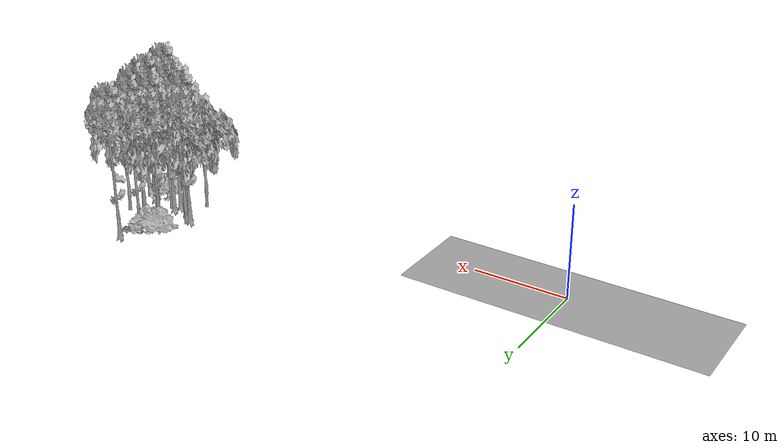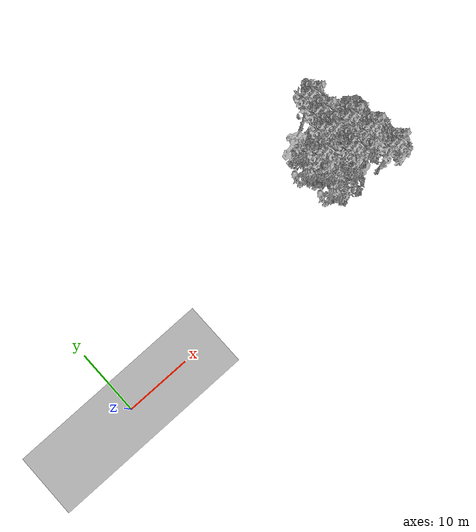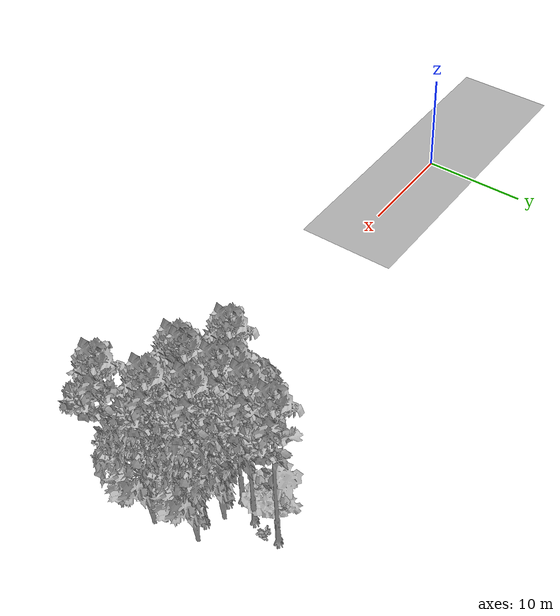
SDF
<sdf version="1.7">
 <world name="default">
  <model name="ground_plane">
   <static>1</static>
   <link name="link">
    <collision name="collision">
     <pose>-50 0 0 0 -0 0</pose>
     <geometry><plane><normal>0 0 1</normal><size>100 100</size></plane></geometry>
     <surface><contact><ode><min_depth>0.01</min_depth><max_vel>0</max_vel></ode></contact></surface>
    </collision>
    <visual name="grass">
     <cast_shadows>0</cast_shadows>
     <geometry>
      <mesh>
       <scale>0.5814285714285714 0.18142857142857144 0.1</scale>
       <uri>file://grass_plane/meshes/grass_plane.dae</uri>
      </mesh>
     </geometry>
    </visual>
   </link>
  </model>
  <model name="Tree 30">
   <static>1</static>
   <pose>42.814088465618525 11.776447009183112 0 1.57079 -0 0</pose>
   <link name="link">
    <collision name="collision">
     <geometry><mesh><scale>4 2.5 4</scale><uri>model://tree_1/meshes/tree_1.obj</uri></mesh></geometry>
    </collision>
    <visual name="visual">
     <geometry><mesh><scale>4 2.5 4</scale><uri>model://tree_1/meshes/tree_1.obj</uri></mesh></geometry>
    </visual>
   </link>
  </model>
  <model name="Tree 72">
   <static>1</static>
   <pose>46.62111516740063 4.762202602951525 0 1.57079 -0 0</pose>
   <link name="link">
    <collision name="collision">
     <geometry><mesh><scale>4 2.5 4</scale><uri>model://tree_1/meshes/tree_1.obj</uri></mesh></geometry>
    </collision>
    <visual name="visual">
     <geometry><mesh><scale>4 2.5 4</scale><uri>model://tree_1/meshes/tree_1.obj</uri></mesh></geometry>
    </visual>
   </link>
  </model>
  <model name="Tree 74">
   <static>1</static>
   <pose>41.7084369196469 7.2482121480126445 0 1.57079 -0 0</pose>
   <link name="link">
    <collision name="collision">
     <geometry><mesh><scale>3.5 5 3.5</scale><uri>model://tree_2/meshes/tree_2.obj</uri></mesh></geometry>
    </collision>
    <visual name="visual">
     <geometry><mesh><scale>3.5 5 3.5</scale><uri>model://tree_2/meshes/tree_2.obj</uri></mesh></geometry>
    </visual>
   </link>
  </model>
  <model name="Tree 99">
   <static>1</static>
   <pose>44.405978747927534 11.415421248474729 0 1.57079 -0 0</pose>
   <link name="link">
    <collision name="collision">
     <geometry><mesh><scale>3.5 5 3.5</scale><uri>model://tree_9/meshes/tree_9.obj</uri></mesh></geometry>
    </collision>
    <visual name="visual">
     <geometry><mesh><scale>3.5 5 3.5</scale><uri>model://tree_9/meshes/tree_9.obj</uri></mesh></geometry>
    </visual>
   </link>
  </model>
  <model name="Tree 101">
   <static>1</static>
   <pose>48.077604862482644 9.018824888027062 0 1.57079 -0 0</pose>
   <link name="link">
    <collision name="collision">
     <geometry><mesh><scale>3.5 5 3.5</scale><uri>model://tree_2/meshes/tree_2.obj</uri></mesh></geometry>
    </collision>
    <visual name="visual">
     <geometry><mesh><scale>3.5 5 3.5</scale><uri>model://tree_2/meshes/tree_2.obj</uri></mesh></geometry>
    </visual>
   </link>
  </model>
  <model name="Tree 118">
   <static>1</static>
   <pose>44.19035276457659 5.290827791162336 0 1.57079 -0 0</pose>
   <link name="link">
    <collision name="collision">
     <geometry><mesh><scale>3.5 5 3.5</scale><uri>model://tree_9/meshes/tree_9.obj</uri></mesh></geometry>
    </collision>
    <visual name="visual">
     <geometry><mesh><scale>3.5 5 3.5</scale><uri>model://tree_9/meshes/tree_9.obj</uri></mesh></geometry>
    </visual>
   </link>
  </model>
  <model name="Tree 123">
   <static>1</static>
   <pose>44.218413379315294 8.724882039757606 0 1.57079 -0 0</pose>
   <link name="link">
    <collision name="collision">
     <geometry><mesh><scale>3.5 5 3.5</scale><uri>model://tree_9/meshes/tree_9.obj</uri></mesh></geometry>
    </collision>
    <visual name="visual">
     <geometry><mesh><scale>3.5 5 3.5</scale><uri>model://tree_9/meshes/tree_9.obj</uri></mesh></geometry>
    </visual>
   </link>
  </model>
  <model name="Tree 194">
   <static>1</static>
   <pose>44.3466928831227 6.159178286607066 0 1.57079 -0 0</pose>
   <link name="link">
    <collision name="collision">
     <geometry><mesh><scale>3.5 5 3.5</scale><uri>model://tree_9/meshes/tree_9.obj</uri></mesh></geometry>
    </collision>
    <visual name="visual">
     <geometry><mesh><scale>3.5 5 3.5</scale><uri>model://tree_9/meshes/tree_9.obj</uri></mesh></geometry>
    </visual>
   </link>
  </model>
  <model name="Tree 195">
   <static>1</static>
   <pose>41.81549104540778 11.3150326184711 0 1.57079 -0 0</pose>
   <link name="link">
    <collision name="collision">
     <geometry><mesh><scale>3 2 3</scale><uri>model://tree_3/meshes/tree_3.obj</uri></mesh></geometry>
    </collision>
    <visual name="visual">
     <geometry><mesh><scale>3 2 3</scale><uri>model://tree_3/meshes/tree_3.obj</uri></mesh></geometry>
    </visual>
   </link>
  </model>
  <model name="Tree 200">
   <static>1</static>
   <pose>44.57800118477398 6.238231747093796 0 1.57079 -0 0</pose>
   <link name="link">
    <collision name="collision">
     <geometry><mesh><scale>3.5 5 3.5</scale><uri>model://tree_2/meshes/tree_2.obj</uri></mesh></geometry>
    </collision>
    <visual name="visual">
     <geometry><mesh><scale>3.5 5 3.5</scale><uri>model://tree_2/meshes/tree_2.obj</uri></mesh></geometry>
    </visual>
   </link>
  </model>
  <model name="Tree 264">
   <static>1</static>
   <pose>41.544255717379485 3.8640353598408446 0 1.57079 -0 0</pose>
   <link name="link">
    <collision name="collision">
     <geometry><mesh><scale>3.5 5 3.5</scale><uri>model://tree_2/meshes/tree_2.obj</uri></mesh></geometry>
    </collision>
    <visual name="visual">
     <geometry><mesh><scale>3.5 5 3.5</scale><uri>model://tree_2/meshes/tree_2.obj</uri></mesh></geometry>
    </visual>
   </link>
  </model>
  <model name="Tree 282">
   <static>1</static>
   <pose>40.99205082789025 7.312150070615143 0 1.57079 -0 0</pose>
   <link name="link">
    <collision name="collision">
     <geometry><mesh><scale>3.5 5 3.5</scale><uri>model://tree_9/meshes/tree_9.obj</uri></mesh></geometry>
    </collision>
    <visual name="visual">
     <geometry><mesh><scale>3.5 5 3.5</scale><uri>model://tree_9/meshes/tree_9.obj</uri></mesh></geometry>
    </visual>
   </link>
  </model>
  <model name="Tree 328">
   <static>1</static>
   <pose>48.724919353243195 5.330726766888198 0 1.57079 -0 0</pose>
   <link name="link">
    <collision name="collision">
     <geometry><mesh><scale>3.5 5 3.5</scale><uri>model://tree_2/meshes/tree_2.obj</uri></mesh></geometry>
    </collision>
    <visual name="visual">
     <geometry><mesh><scale>3.5 5 3.5</scale><uri>model://tree_2/meshes/tree_2.obj</uri></mesh></geometry>
    </visual>
   </link>
  </model>
  <model name="Tree 336">
   <static>1</static>
   <pose>44.44474423675294 8.37601105457814 0 1.57079 -0 0</pose>
   <link name="link">
    <collision name="collision">
     <geometry><mesh><scale>3.5 5 3.5</scale><uri>model://tree_2/meshes/tree_2.obj</uri></mesh></geometry>
    </collision>
    <visual name="visual">
     <geometry><mesh><scale>3.5 5 3.5</scale><uri>model://tree_2/meshes/tree_2.obj</uri></mesh></geometry>
    </visual>
   </link>
  </model>
  <model name="Tree 363">
   <static>1</static>
   <pose>40.76857866821615 8.107741798968153 0 1.57079 -0 0</pose>
   <link name="link">
    <collision name="collision">
     <geometry><mesh><scale>3.5 5 3.5</scale><uri>model://tree_2/meshes/tree_2.obj</uri></mesh></geometry>
    </collision>
    <visual name="visual">
     <geometry><mesh><scale>3.5 5 3.5</scale><uri>model://tree_2/meshes/tree_2.obj</uri></mesh></geometry>
    </visual>
   </link>
  </model>
  <model name="Tree 383">
   <static>1</static>
   <pose>45.46868631997819 9.418103245508107 0 1.57079 -0 0</pose>
   <link name="link">
    <collision name="collision">
     <geometry><mesh><scale>3.5 5 3.5</scale><uri>model://tree_2/meshes/tree_2.obj</uri></mesh></geometry>
    </collision>
    <visual name="visual">
     <geometry><mesh><scale>3.5 5 3.5</scale><uri>model://tree_2/meshes/tree_2.obj</uri></mesh></geometry>
    </visual>
   </link>
  </model>
  <model name="Tree 415">
   <static>1</static>
   <pose>48.61882726342735 1.9196039616221974 0 1.57079 -0 0</pose>
   <link name="link">
    <collision name="collision">
     <geometry><mesh><scale>3.5 5 3.5</scale><uri>model://tree_9/meshes/tree_9.obj</uri></mesh></geometry>
    </collision>
    <visual name="visual">
     <geometry><mesh><scale>3.5 5 3.5</scale><uri>model://tree_9/meshes/tree_9.obj</uri></mesh></geometry>
    </visual>
   </link>
  </model>
  <model name="Tree 424">
   <static>1</static>
   <pose>44.83558307942474 13.969507089384589 0 1.57079 -0 0</pose>
   <link name="link">
    <collision name="collision">
     <geometry><mesh><scale>3.5 5 3.5</scale><uri>model://tree_9/meshes/tree_9.obj</uri></mesh></geometry>
    </collision>
    <visual name="visual">
     <geometry><mesh><scale>3.5 5 3.5</scale><uri>model://tree_9/meshes/tree_9.obj</uri></mesh></geometry>
    </visual>
   </link>
  </model>
  <model name="Tree 432">
   <static>1</static>
   <pose>42.00587493265003 6.515347241321159 0 1.57079 -0 0</pose>
   <link name="link">
    <collision name="collision">
     <geometry><mesh><scale>3.5 5 3.5</scale><uri>model://tree_2/meshes/tree_2.obj</uri></mesh></geometry>
    </collision>
    <visual name="visual">
     <geometry><mesh><scale>3.5 5 3.5</scale><uri>model://tree_2/meshes/tree_2.obj</uri></mesh></geometry>
    </visual>
   </link>
  </model>
  <model name="Tree 466">
   <static>1</static>
   <pose>43.402606027706526 9.497604859942712 0 1.57079 -0 0</pose>
   <link name="link">
    <collision name="collision">
     <geometry><mesh><scale>3.5 5 3.5</scale><uri>model://tree_9/meshes/tree_9.obj</uri></mesh></geometry>
    </collision>
    <visual name="visual">
     <geometry><mesh><scale>3.5 5 3.5</scale><uri>model://tree_9/meshes/tree_9.obj</uri></mesh></geometry>
    </visual>
   </link>
  </model>
  <model name="Tree 494">
   <static>1</static>
   <pose>46.61350831292255 8.439886423895732 0 1.57079 -0 0</pose>
   <link name="link">
    <collision name="collision">
     <geometry><mesh><scale>3.5 5 3.5</scale><uri>model://tree_9/meshes/tree_9.obj</uri></mesh></geometry>
    </collision>
    <visual name="visual">
     <geometry><mesh><scale>3.5 5 3.5</scale><uri>model://tree_9/meshes/tree_9.obj</uri></mesh></geometry>
    </visual>
   </link>
  </model>
  <model name="Tree 497">
   <static>1</static>
   <pose>47.72215773540593 5.605811881760594 0 1.57079 -0 0</pose>
   <link name="link">
    <collision name="collision">
     <geometry><mesh><scale>3.5 5 3.5</scale><uri>model://tree_9/meshes/tree_9.obj</uri></mesh></geometry>
    </collision>
    <visual name="visual">
     <geometry><mesh><scale>3.5 5 3.5</scale><uri>model://tree_9/meshes/tree_9.obj</uri></mesh></geometry>
    </visual>
   </link>
  </model>
  <model name="Bush 3">
   <static>1</static>
   <pose>44.98750759303606 12.735081016473742 0 1.57079 -0 0</pose>
   <link name="link">
    <collision name="collision">
     <geometry><mesh><scale>2 2 2</scale><uri>model://bush_2/meshes/bush_2.obj</uri></mesh></geometry>
     <surface><contact><collide_without_contact>false</collide_without_contact></contact></surface>
    </collision>
    <visual name="visual">
     <geometry><mesh><scale>2 2 2</scale><uri>model://bush_2/meshes/bush_2.obj</uri></mesh></geometry>
    </visual>
   </link>
  </model>
 </world>
</sdf>
